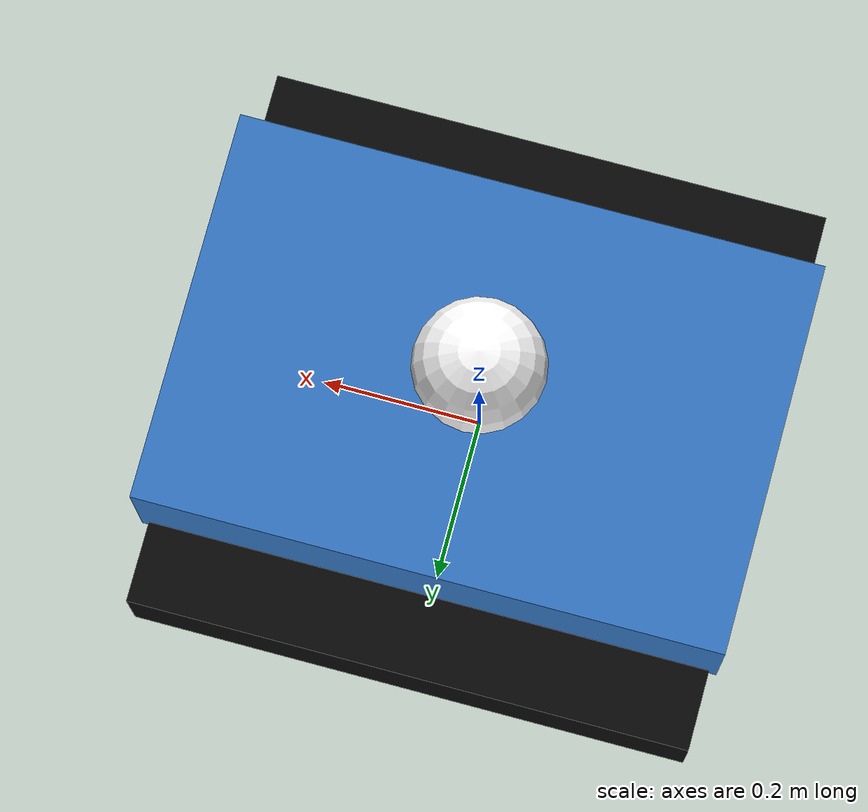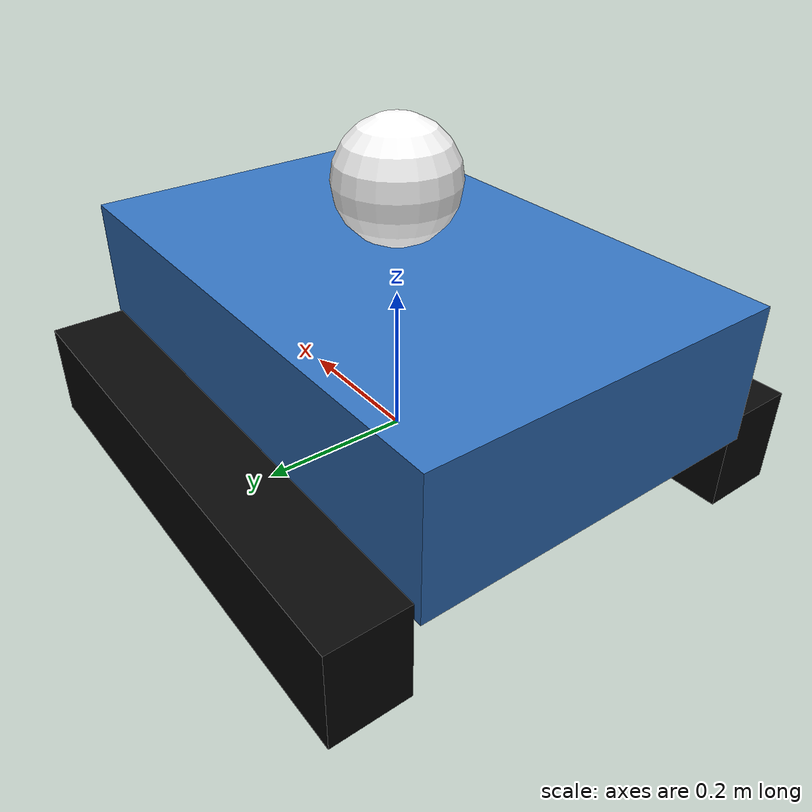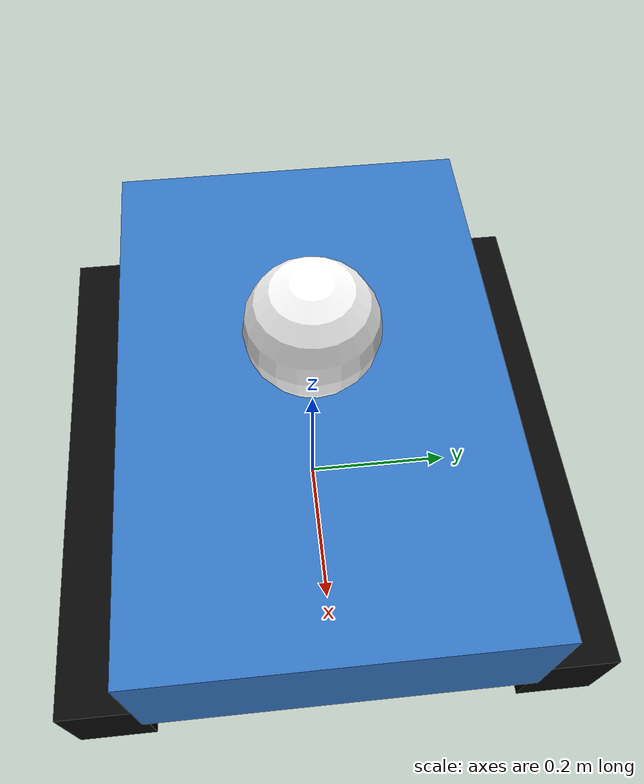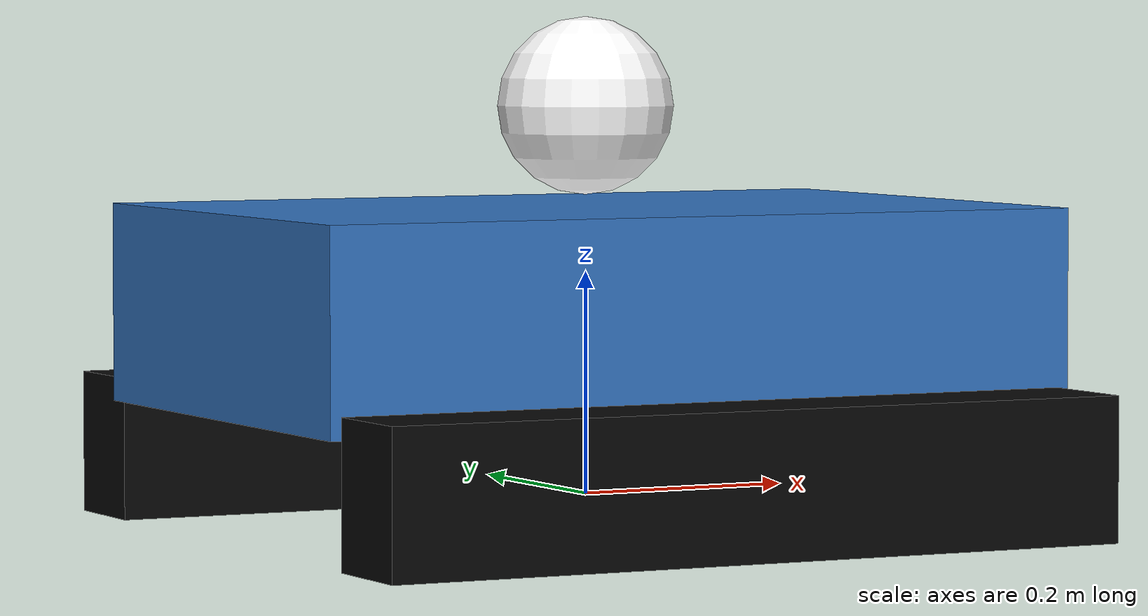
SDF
<?xml version="1.0" ?>
<sdf version="1.8">
  <model name="thrust_robot">
    <pose>0 0 0 0 0 0</pose>

    <link name="base_link">
      <!-- Приподнять шасси: основной контакт через гусеницы, без «ползания» брюхом. -->
      <pose>0 0 0.17 0 0 0</pose>
      <inertial>
        <mass>36.0</mass>
        <inertia>
          <ixx>1.05</ixx>
          <iyy>1.95</iyy>
          <izz>2.55</izz>
          <ixy>0</ixy><ixz>0</ixz><iyz>0</iyz>
        </inertia>
      </inertial>

      <collision name="base_collision">
        <geometry>
          <box><size>0.72 0.48 0.18</size></box>
        </geometry>
        <surface>
          <friction>
            <ode><mu>0.8</mu><mu2>0.8</mu2></ode>
          </friction>
        </surface>
      </collision>

      <visual name="base_visual">
        <geometry>
          <box><size>0.72 0.48 0.18</size></box>
        </geometry>
        <material>
          <ambient>0.2 0.45 0.75 1</ambient>
          <diffuse>0.2 0.45 0.75 1</diffuse>
        </material>
      </visual>

      <!-- Опорная точка навигации: достижение waypoint проверяется от центра робота. -->
      <visual name="nav_center_marker">
        <pose>0 0 0.18 0 0 0</pose>
        <geometry>
          <sphere><radius>0.08</radius></sphere>
        </geometry>
        <material>
          <ambient>1 1 1 1</ambient>
          <diffuse>1 1 1 1</diffuse>
        </material>
      </visual>

      <!-- IMU -->
      <sensor name="imu_sensor" type="imu">
        <always_on>true</always_on>
        <update_rate>50</update_rate>
        <topic>/imu</topic>
        <imu>
          <angular_velocity>
            <x><noise type="gaussian"><mean>0.0</mean><stddev>0.0004</stddev><bias_mean>0.0</bias_mean><bias_stddev>0.00002</bias_stddev></noise></x>
            <y><noise type="gaussian"><mean>0.0</mean><stddev>0.0004</stddev><bias_mean>0.0</bias_mean><bias_stddev>0.00002</bias_stddev></noise></y>
            <z><noise type="gaussian"><mean>0.0</mean><stddev>0.0008</stddev><bias_mean>0.0</bias_mean><bias_stddev>0.00004</bias_stddev></noise></z>
          </angular_velocity>
          <linear_acceleration>
            <x><noise type="gaussian"><mean>0.0</mean><stddev>0.03</stddev><bias_mean>0.0</bias_mean><bias_stddev>0.002</bias_stddev></noise></x>
            <y><noise type="gaussian"><mean>0.0</mean><stddev>0.03</stddev><bias_mean>0.0</bias_mean><bias_stddev>0.002</bias_stddev></noise></y>
            <z><noise type="gaussian"><mean>0.0</mean><stddev>0.05</stddev><bias_mean>0.0</bias_mean><bias_stddev>0.003</bias_stddev></noise></z>
          </linear_acceleration>
        </imu>
      </sensor>

      <!-- GPS (NavSat) -->
      <sensor name="gps_sensor" type="navsat">
        <always_on>true</always_on>
        <update_rate>10</update_rate>
        <topic>/gps</topic>
        <navsat>
          <position_sensing>
            <horizontal>
              <noise type="gaussian">
                <mean>0.0</mean>
                <!-- ~0.6 м по широте (gz-sensors применяет horizontal position noise в градусах) -->
                <stddev>0.0000054</stddev>
              </noise>
            </horizontal>
            <vertical>
              <noise type="gaussian">
                <mean>0.0</mean>
                <stddev>1.0</stddev>
              </noise>
            </vertical>
          </position_sensing>
          <velocity_sensing>
            <horizontal>
              <noise type="gaussian">
                <mean>0.0</mean>
                <stddev>0.04</stddev>
              </noise>
            </horizontal>
            <vertical>
              <noise type="gaussian">
                <mean>0.0</mean>
                <stddev>0.08</stddev>
              </noise>
            </vertical>
          </velocity_sensing>
        </navsat>
      </sensor>
    </link>

    <!-- Гусеницы (физика): пятно контакта + поверхностное движение TrackController -->
    <link name="left_track">
      <pose>0 0.29 0.035 0 0 0</pose>
      <inertial>
        <mass>1.0</mass>
        <inertia>
          <ixx>0.02</ixx><iyy>0.02</iyy><izz>0.02</izz>
          <ixy>0</ixy><ixz>0</ixz><iyz>0</iyz>
        </inertia>
      </inertial>

      <!-- Несколько коллизий для устойчивого контакта -->
      <collision name="left_track_collision">
        <pose>0 0 0 0 0 0</pose>
        <geometry><box><size>0.26 0.10 0.07</size></box></geometry>
        <surface><friction><ode><mu>6.0</mu><mu2>6.0</mu2></ode></friction></surface>
      </collision>
      <collision name="left_track_collision_1">
        <pose>0.22 0 0 0 0 0</pose>
        <geometry><box><size>0.26 0.10 0.07</size></box></geometry>
        <surface><friction><ode><mu>6.0</mu><mu2>6.0</mu2></ode></friction></surface>
      </collision>
      <collision name="left_track_collision_2">
        <pose>-0.22 0 0 0 0 0</pose>
        <geometry><box><size>0.26 0.10 0.07</size></box></geometry>
        <surface><friction><ode><mu>6.0</mu><mu2>6.0</mu2></ode></friction></surface>
      </collision>

      <visual name="left_track_vis">
        <geometry><box><size>0.70 0.10 0.13</size></box></geometry>
        <material><ambient>0.03 0.03 0.03 1</ambient><diffuse>0.03 0.03 0.03 1</diffuse></material>
      </visual>
    </link>

    <link name="right_track">
      <pose>0 -0.29 0.035 0 0 0</pose>
      <inertial>
        <mass>1.0</mass>
        <inertia>
          <ixx>0.02</ixx><iyy>0.02</iyy><izz>0.02</izz>
          <ixy>0</ixy><ixz>0</ixz><iyz>0</iyz>
        </inertia>
      </inertial>

      <collision name="right_track_collision">
        <pose>0 0 0 0 0 0</pose>
        <geometry><box><size>0.26 0.10 0.07</size></box></geometry>
        <surface><friction><ode><mu>6.0</mu><mu2>6.0</mu2></ode></friction></surface>
      </collision>
      <collision name="right_track_collision_1">
        <pose>0.22 0 0 0 0 0</pose>
        <geometry><box><size>0.26 0.10 0.07</size></box></geometry>
        <surface><friction><ode><mu>6.0</mu><mu2>6.0</mu2></ode></friction></surface>
      </collision>
      <collision name="right_track_collision_2">
        <pose>-0.22 0 0 0 0 0</pose>
        <geometry><box><size>0.26 0.10 0.07</size></box></geometry>
        <surface><friction><ode><mu>6.0</mu><mu2>6.0</mu2></ode></friction></surface>
      </collision>

      <visual name="right_track_vis">
        <geometry><box><size>0.70 0.10 0.13</size></box></geometry>
        <material><ambient>0.03 0.03 0.03 1</ambient><diffuse>0.03 0.03 0.03 1</diffuse></material>
      </visual>
    </link>

    <joint name="left_track_joint" type="fixed">
      <parent>base_link</parent>
      <child>left_track</child>
    </joint>

    <joint name="right_track_joint" type="fixed">
      <parent>base_link</parent>
      <child>right_track</child>
    </joint>

    <!-- Задание скорости поверхности гусеницы -->
    <plugin filename="gz-sim-track-controller-system" name="gz::sim::systems::TrackController">
      <link>left_track</link>
      <debug>0</debug>
      <track_orientation>0 0 0</track_orientation>
      <min_velocity>-1.0</min_velocity>
      <max_velocity>1.0</max_velocity>
    </plugin>
    <plugin filename="gz-sim-track-controller-system" name="gz::sim::systems::TrackController">
      <link>right_track</link>
      <debug>0</debug>
      <track_orientation>0 0 0</track_orientation>
      <min_velocity>-1.0</min_velocity>
      <max_velocity>1.0</max_velocity>
    </plugin>

    <!-- Контроллер гусеничной машины (не колёса) -->
    <plugin filename="gz-sim-tracked-vehicle-system" name="gz::sim::systems::TrackedVehicle">
      <left_track>
        <link>left_track</link>
      </left_track>
      <right_track>
        <link>right_track</link>
      </right_track>
      <track_separation>0.58</track_separation>
      <track_height>0.14</track_height>
      <steering_efficiency>1.0</steering_efficiency>
    </plugin>

  </model>
</sdf>
